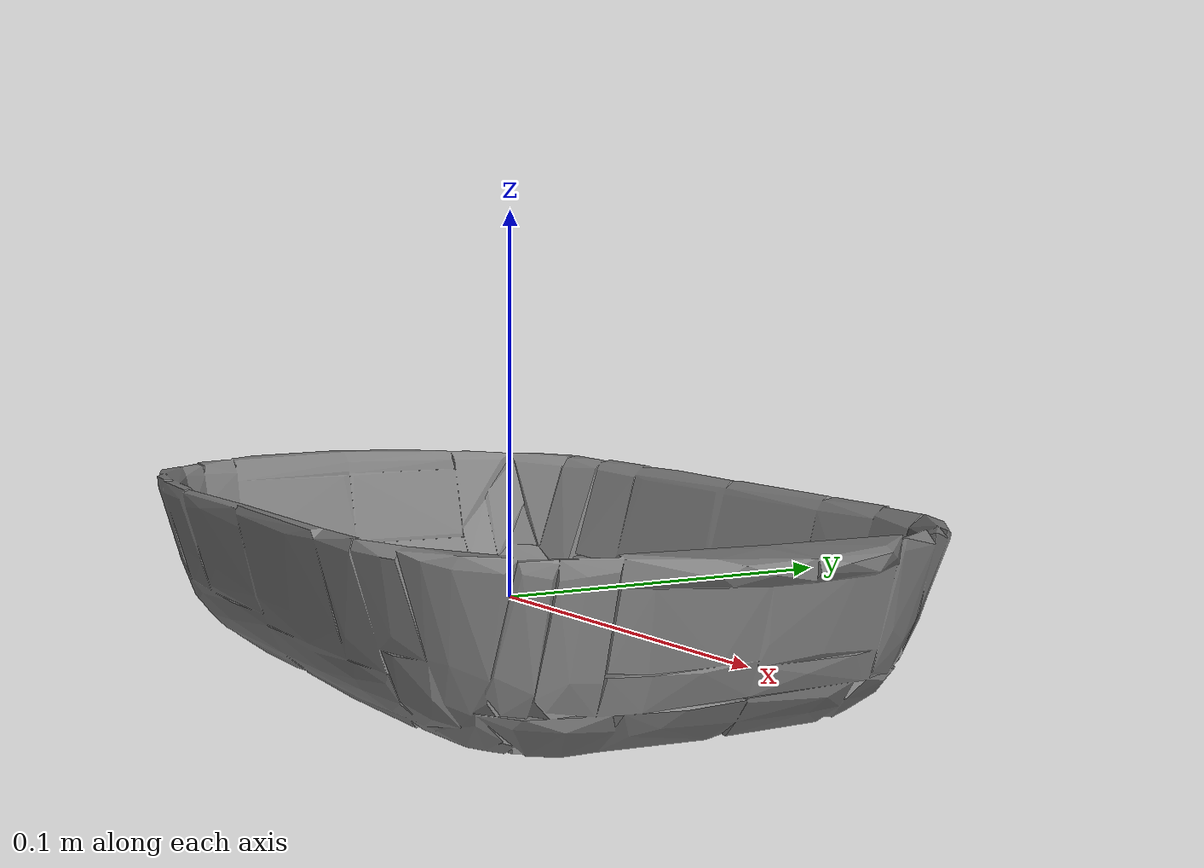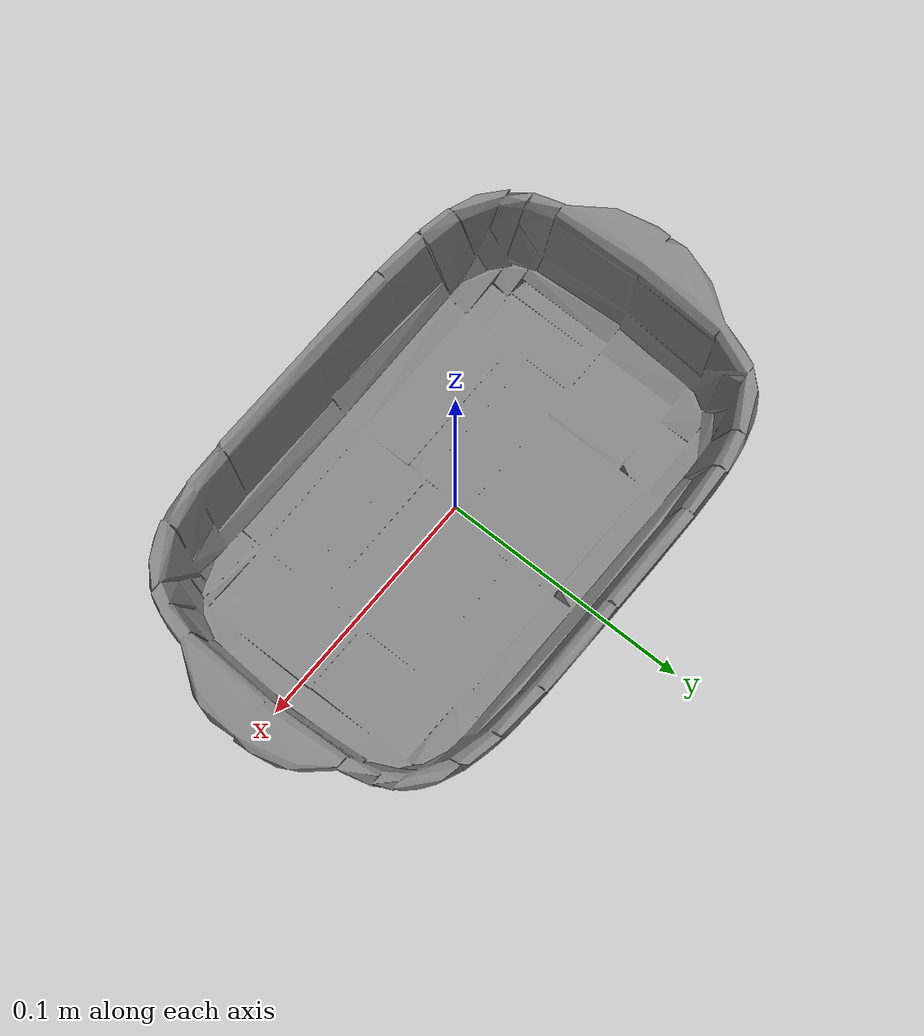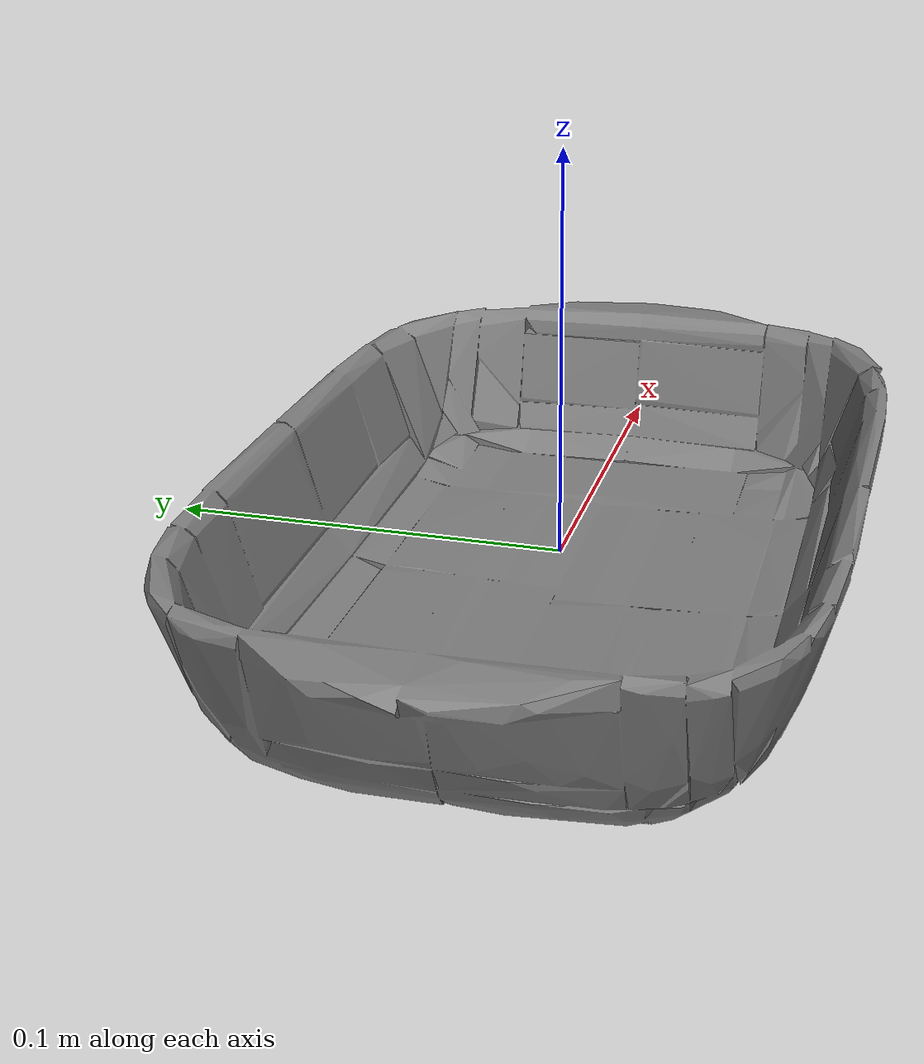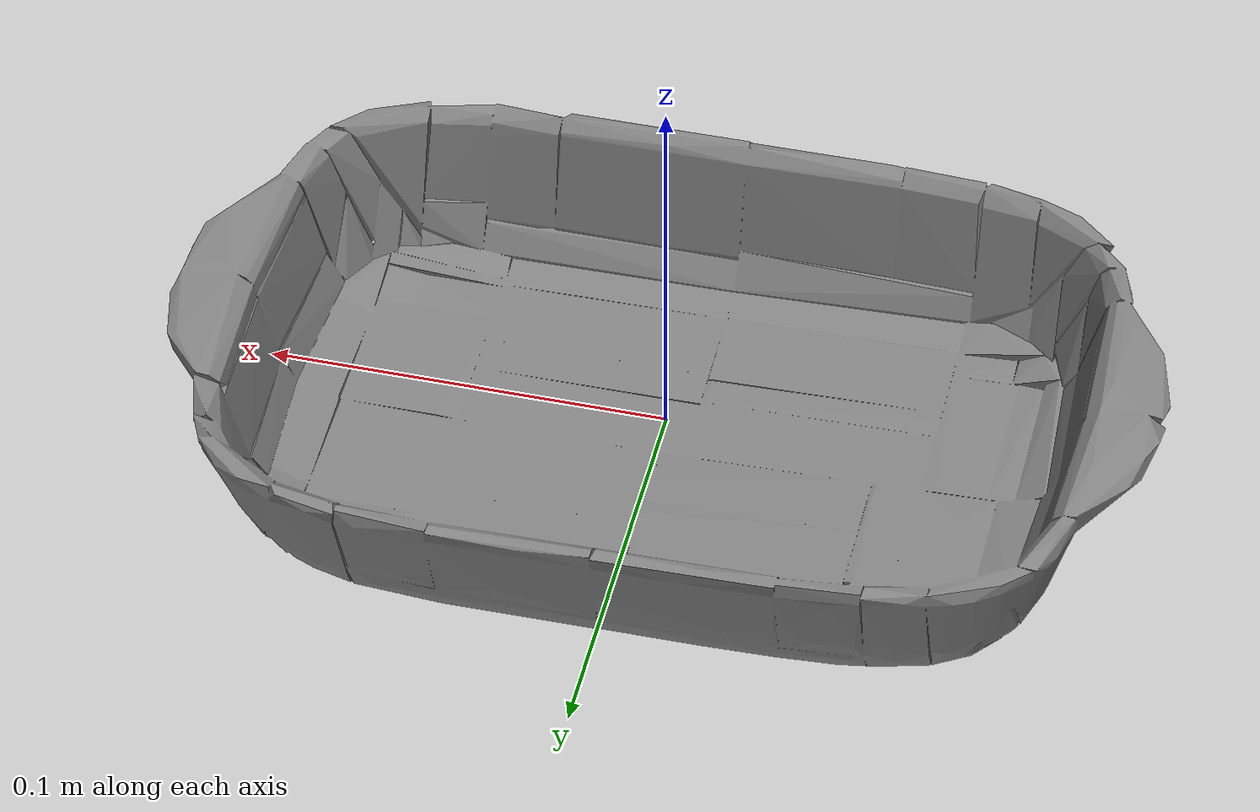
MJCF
<mujoco model="dish_Corningware_CW_by_Corningware_3qt_Oblong_Casserole_Dish_Blue_M">
  <default>
    <default class="visual">
      <geom group="2" type="mesh" contype="0" conaffinity="0" />
    </default>
    <default class="collision">
      <geom group="3" type="mesh" />
    </default>
  </default>
  <asset>
    <mesh file="dish_Corningware_CW_by_Corningware_3qt_Oblong_Casserole_Dish_Blue_M.stl" />
    <mesh file="dish_Corningware_CW_by_Corningware_3qt_Oblong_Casserole_Dish_Blue_M_collision_0.stl" />
    <mesh file="dish_Corningware_CW_by_Corningware_3qt_Oblong_Casserole_Dish_Blue_M_collision_1.stl" />
    <mesh file="dish_Corningware_CW_by_Corningware_3qt_Oblong_Casserole_Dish_Blue_M_collision_2.stl" />
    <mesh file="dish_Corningware_CW_by_Corningware_3qt_Oblong_Casserole_Dish_Blue_M_collision_3.stl" />
    <mesh file="dish_Corningware_CW_by_Corningware_3qt_Oblong_Casserole_Dish_Blue_M_collision_4.stl" />
    <mesh file="dish_Corningware_CW_by_Corningware_3qt_Oblong_Casserole_Dish_Blue_M_collision_5.stl" />
    <mesh file="dish_Corningware_CW_by_Corningware_3qt_Oblong_Casserole_Dish_Blue_M_collision_6.stl" />
    <mesh file="dish_Corningware_CW_by_Corningware_3qt_Oblong_Casserole_Dish_Blue_M_collision_7.stl" />
    <mesh file="dish_Corningware_CW_by_Corningware_3qt_Oblong_Casserole_Dish_Blue_M_collision_8.stl" />
    <mesh file="dish_Corningware_CW_by_Corningware_3qt_Oblong_Casserole_Dish_Blue_M_collision_9.stl" />
    <mesh file="dish_Corningware_CW_by_Corningware_3qt_Oblong_Casserole_Dish_Blue_M_collision_10.stl" />
    <mesh file="dish_Corningware_CW_by_Corningware_3qt_Oblong_Casserole_Dish_Blue_M_collision_11.stl" />
    <mesh file="dish_Corningware_CW_by_Corningware_3qt_Oblong_Casserole_Dish_Blue_M_collision_12.stl" />
    <mesh file="dish_Corningware_CW_by_Corningware_3qt_Oblong_Casserole_Dish_Blue_M_collision_13.stl" />
    <mesh file="dish_Corningware_CW_by_Corningware_3qt_Oblong_Casserole_Dish_Blue_M_collision_14.stl" />
    <mesh file="dish_Corningware_CW_by_Corningware_3qt_Oblong_Casserole_Dish_Blue_M_collision_15.stl" />
  </asset>
  <worldbody>
    <body name="dish_Corningware_CW_by_Corningware_3qt_Oblong_Casserole_Dish_Blue_M">
      <geom mesh="dish_Corningware_CW_by_Corningware_3qt_Oblong_Casserole_Dish_Blue_M" class="visual" />
      <geom mesh="dish_Corningware_CW_by_Corningware_3qt_Oblong_Casserole_Dish_Blue_M_collision_0" class="collision" />
      <geom mesh="dish_Corningware_CW_by_Corningware_3qt_Oblong_Casserole_Dish_Blue_M_collision_1" class="collision" />
      <geom mesh="dish_Corningware_CW_by_Corningware_3qt_Oblong_Casserole_Dish_Blue_M_collision_2" class="collision" />
      <geom mesh="dish_Corningware_CW_by_Corningware_3qt_Oblong_Casserole_Dish_Blue_M_collision_3" class="collision" />
      <geom mesh="dish_Corningware_CW_by_Corningware_3qt_Oblong_Casserole_Dish_Blue_M_collision_4" class="collision" />
      <geom mesh="dish_Corningware_CW_by_Corningware_3qt_Oblong_Casserole_Dish_Blue_M_collision_5" class="collision" />
      <geom mesh="dish_Corningware_CW_by_Corningware_3qt_Oblong_Casserole_Dish_Blue_M_collision_6" class="collision" />
      <geom mesh="dish_Corningware_CW_by_Corningware_3qt_Oblong_Casserole_Dish_Blue_M_collision_7" class="collision" />
      <geom mesh="dish_Corningware_CW_by_Corningware_3qt_Oblong_Casserole_Dish_Blue_M_collision_8" class="collision" />
      <geom mesh="dish_Corningware_CW_by_Corningware_3qt_Oblong_Casserole_Dish_Blue_M_collision_9" class="collision" />
      <geom mesh="dish_Corningware_CW_by_Corningware_3qt_Oblong_Casserole_Dish_Blue_M_collision_10" class="collision" />
      <geom mesh="dish_Corningware_CW_by_Corningware_3qt_Oblong_Casserole_Dish_Blue_M_collision_11" class="collision" />
      <geom mesh="dish_Corningware_CW_by_Corningware_3qt_Oblong_Casserole_Dish_Blue_M_collision_12" class="collision" />
      <geom mesh="dish_Corningware_CW_by_Corningware_3qt_Oblong_Casserole_Dish_Blue_M_collision_13" class="collision" />
      <geom mesh="dish_Corningware_CW_by_Corningware_3qt_Oblong_Casserole_Dish_Blue_M_collision_14" class="collision" />
      <geom mesh="dish_Corningware_CW_by_Corningware_3qt_Oblong_Casserole_Dish_Blue_M_collision_15" class="collision" />
    </body>
  </worldbody>
</mujoco>
